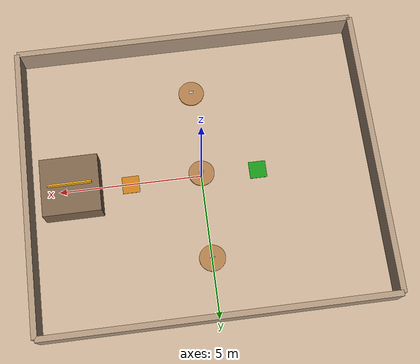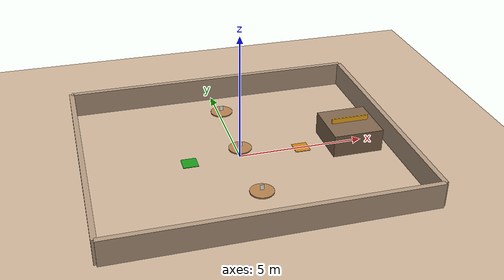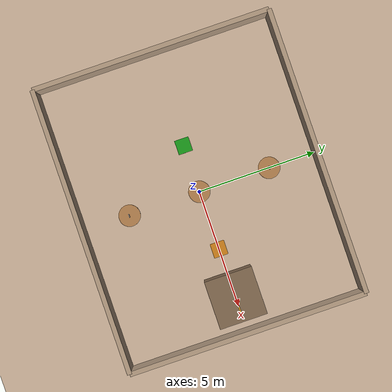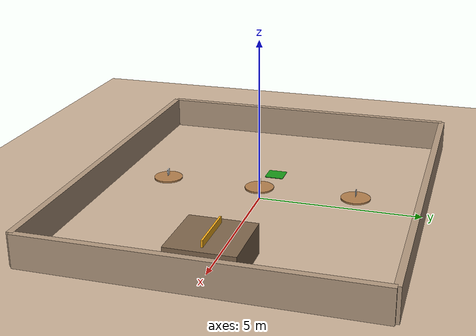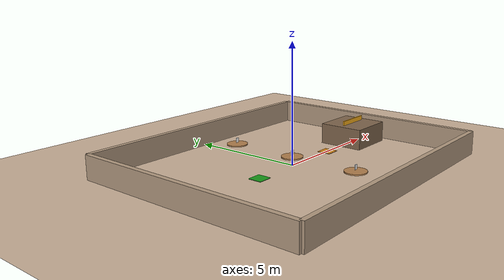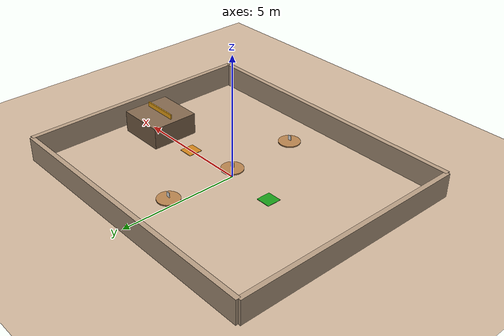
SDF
<?xml version="1.0"?>
<sdf version="1.6">
  <world name="coffee_shop">

    <!-- ── Physics & rendering ─────────────────────────────────────── -->
    <physics name="default_physics" default="0" type="ode">
      <max_step_size>0.001</max_step_size>
      <real_time_factor>1.0</real_time_factor>
      <real_time_update_rate>1000</real_time_update_rate>
    </physics>

    <plugin filename="libgazebo_ros_factory.so" name="gazebo_ros_factory"/>

    <!-- ── Lighting ────────────────────────────────────────────────── -->
    <light type="directional" name="sun">
      <cast_shadows>1</cast_shadows>
      <pose>0 0 10 0 0 0</pose>
      <diffuse>0.8 0.8 0.8 1</diffuse>
      <specular>0.2 0.2 0.2 1</specular>
      <direction>-0.5 0.1 -0.9</direction>
    </light>

    <!-- ── Ground ──────────────────────────────────────────────────── -->
    <model name="ground_plane">
      <static>true</static>
      <link name="link">
        <collision name="collision">
          <geometry><plane><normal>0 0 1</normal><size>20 20</size></plane></geometry>
        </collision>
        <visual name="visual">
          <geometry><plane><normal>0 0 1</normal><size>20 20</size></plane></geometry>
          <material>
            <ambient>0.8 0.7 0.6 1</ambient>
            <diffuse>0.8 0.7 0.6 1</diffuse>
          </material>
        </visual>
      </link>
    </model>

    <!-- ── Boundary walls ──────────────────────────────────────────── -->
    <!-- North wall -->
    <model name="wall_north">
      <static>true</static>
      <pose>0 5 0.5 0 0 0</pose>
      <link name="link">
        <collision name="col"><geometry><box><size>12 0.2 1</size></box></geometry></collision>
        <visual name="vis">
          <geometry><box><size>12 0.2 1</size></box></geometry>
          <material><ambient>0.7 0.6 0.5 1</ambient><diffuse>0.7 0.6 0.5 1</diffuse></material>
        </visual>
      </link>
    </model>

    <!-- South wall -->
    <model name="wall_south">
      <static>true</static>
      <pose>0 -5 0.5 0 0 0</pose>
      <link name="link">
        <collision name="col"><geometry><box><size>12 0.2 1</size></box></geometry></collision>
        <visual name="vis">
          <geometry><box><size>12 0.2 1</size></box></geometry>
          <material><ambient>0.7 0.6 0.5 1</ambient><diffuse>0.7 0.6 0.5 1</diffuse></material>
        </visual>
      </link>
    </model>

    <!-- East wall -->
    <model name="wall_east">
      <static>true</static>
      <pose>6 0 0.5 0 0 0</pose>
      <link name="link">
        <collision name="col"><geometry><box><size>0.2 10 1</size></box></geometry></collision>
        <visual name="vis">
          <geometry><box><size>0.2 10 1</size></box></geometry>
          <material><ambient>0.7 0.6 0.5 1</ambient><diffuse>0.7 0.6 0.5 1</diffuse></material>
        </visual>
      </link>
    </model>

    <!-- West wall -->
    <model name="wall_west">
      <static>true</static>
      <pose>-6 0 0.5 0 0 0</pose>
      <link name="link">
        <collision name="col"><geometry><box><size>0.2 10 1</size></box></geometry></collision>
        <visual name="vis">
          <geometry><box><size>0.2 10 1</size></box></geometry>
          <material><ambient>0.7 0.6 0.5 1</ambient><diffuse>0.7 0.6 0.5 1</diffuse></material>
        </visual>
      </link>
    </model>

    <!-- ── Kitchen counter (east side) ─────────────────────────────── -->
    <model name="kitchen_counter">
      <static>true</static>
      <pose>4.5 0 0.45 0 0 0</pose>
      <link name="link">
        <collision name="col"><geometry><box><size>2 2 0.9</size></box></geometry></collision>
        <visual name="vis">
          <geometry><box><size>2 2 0.9</size></box></geometry>
          <material><ambient>0.4 0.3 0.2 1</ambient><diffuse>0.5 0.4 0.3 1</diffuse></material>
        </visual>
      </link>
    </model>

    <!-- Kitchen label marker (thin slab on top of counter) -->
    <model name="kitchen_sign">
      <static>true</static>
      <pose>4.5 0 0.95 0 0 0</pose>
      <link name="link">
        <visual name="vis">
          <geometry><box><size>1.5 0.05 0.3</size></box></geometry>
          <material><ambient>0.9 0.6 0.1 1</ambient><diffuse>1.0 0.7 0.1 1</diffuse></material>
        </visual>
      </link>
    </model>

    <!-- ── Tables ───────────────────────────────────────────────────── -->
    <!-- Table 1 (north, y=3) -->
    <model name="table1">
      <static>true</static>
      <pose>0 3 0.38 0 0 0</pose>
      <link name="link">
        <collision name="col"><geometry><cylinder><radius>0.45</radius><length>0.05</length></cylinder></geometry></collision>
        <visual name="vis">
          <geometry><cylinder><radius>0.45</radius><length>0.05</length></cylinder></geometry>
          <material><ambient>0.6 0.4 0.2 1</ambient><diffuse>0.7 0.5 0.3 1</diffuse></material>
        </visual>
      </link>
    </model>

    <!-- Table 2 (centre, y=0) -->
    <model name="table2">
      <static>true</static>
      <pose>0 0 0.38 0 0 0</pose>
      <link name="link">
        <collision name="col"><geometry><cylinder><radius>0.45</radius><length>0.05</length></cylinder></geometry></collision>
        <visual name="vis">
          <geometry><cylinder><radius>0.45</radius><length>0.05</length></cylinder></geometry>
          <material><ambient>0.6 0.4 0.2 1</ambient><diffuse>0.7 0.5 0.3 1</diffuse></material>
        </visual>
      </link>
    </model>

    <!-- Table 3 (south, y=-3) -->
    <model name="table3">
      <static>true</static>
      <pose>0 -3 0.38 0 0 0</pose>
      <link name="link">
        <collision name="col"><geometry><cylinder><radius>0.45</radius><length>0.05</length></cylinder></geometry></collision>
        <visual name="vis">
          <geometry><cylinder><radius>0.45</radius><length>0.05</length></cylinder></geometry>
          <material><ambient>0.6 0.4 0.2 1</ambient><diffuse>0.7 0.5 0.3 1</diffuse></material>
        </visual>
      </link>
    </model>

    <!-- ── Table number placards ────────────────────────────────────── -->
    <model name="placard_1">
      <static>true</static>
      <pose>0 3 0.55 0 0 0</pose>
      <link name="link">
        <visual name="vis">
          <geometry><box><size>0.15 0.02 0.2</size></box></geometry>
          <material><ambient>1 1 1 1</ambient><diffuse>1 1 1 1</diffuse></material>
        </visual>
      </link>
    </model>

    <model name="placard_2">
      <static>true</static>
      <pose>0 0 0.55 0 0 0</pose>
      <link name="link">
        <visual name="vis">
          <geometry><box><size>0.15 0.02 0.2</size></box></geometry>
          <material><ambient>1 1 1 1</ambient><diffuse>1 1 1 1</diffuse></material>
        </visual>
      </link>
    </model>

    <model name="placard_3">
      <static>true</static>
      <pose>0 -3 0.55 0 0 0</pose>
      <link name="link">
        <visual name="vis">
          <geometry><box><size>0.15 0.02 0.2</size></box></geometry>
          <material><ambient>1 1 1 1</ambient><diffuse>1 1 1 1</diffuse></material>
        </visual>
      </link>
    </model>

    <!-- ── Home docking pad ─────────────────────────────────────────── -->
    <model name="home_pad">
      <static>true</static>
      <pose>-2 0 0.01 0 0 0</pose>
      <link name="link">
        <visual name="vis">
          <geometry><box><size>0.6 0.6 0.02</size></box></geometry>
          <material><ambient>0.1 0.5 0.1 1</ambient><diffuse>0.1 0.6 0.1 1</diffuse></material>
        </visual>
      </link>
    </model>

    <!-- Kitchen stop marker on floor -->
    <model name="kitchen_pad">
      <static>true</static>
      <pose>2.5 0 0.01 0 0 0</pose>
      <link name="link">
        <visual name="vis">
          <geometry><box><size>0.6 0.6 0.02</size></box></geometry>
          <material><ambient>0.6 0.4 0.1 1</ambient><diffuse>0.8 0.5 0.1 1</diffuse></material>
        </visual>
      </link>
    </model>

  </world>
</sdf>
